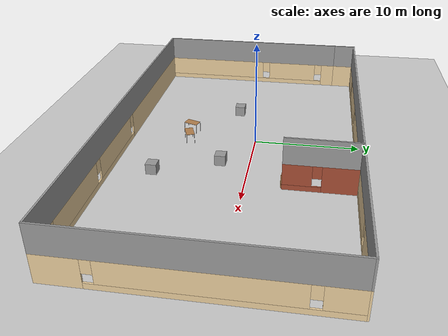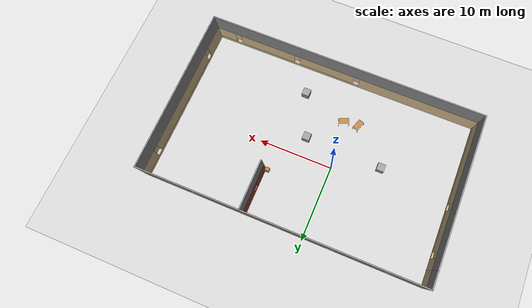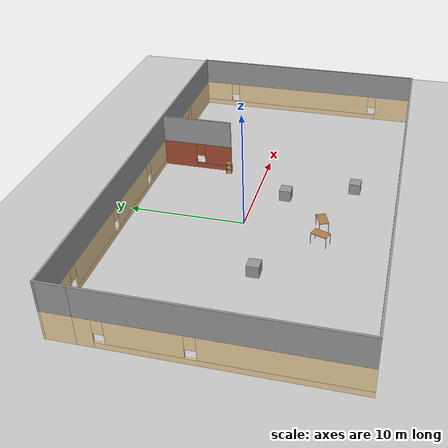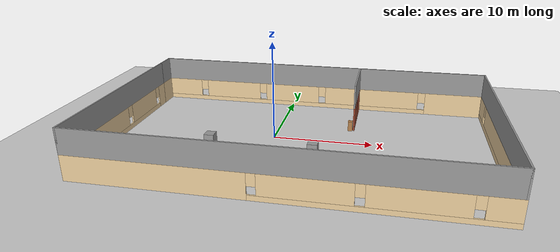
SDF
<sdf version="1.7">
 <world name="default">
  <model name="ground_plane">
   <static>1</static>
   <link name="link">
    <collision name="collision">
     <geometry><plane><normal>0 0 1</normal><size>100 100</size></plane></geometry>
     <surface><friction><ode><mu>100</mu><mu2>50</mu2></ode></friction></surface>
    </collision>
    <visual name="visual">
     <cast_shadows>0</cast_shadows>
     <geometry><plane><normal>0 0 1</normal><size>100 100</size></plane></geometry>
     <material>
      <script><uri>file://media/materials/scripts/gazebo.material</uri><name>Gazebo/Grey</name></script>
     </material>
    </visual>
   </link>
  </model>
  <model name="storage">
   <pose>2.94649 -1.27432 0 0 -0 0</pose>
   <link name="Wall_1">
    <pose>-18.55 -1.125 0 0 0 -1.5708</pose>
    <visual name="Wall_1_Visual_0">
     <pose>-9.16747 0 1.25 0 -0 0</pose>
     <geometry><box><size>1.41505 0.15 2.5</size></box></geometry>
     <material>
      <script><uri>file://media/materials/scripts/gazebo.material</uri><name>Gazebo/Grey</name></script>
      <ambient>0.921569 0.807843 0.615686 1</ambient>
     </material>
    </visual>
    <collision name="Wall_1_Collision_0">
     <geometry><box><size>1.41505 0.15 2.5</size></box></geometry>
     <pose>-9.16747 0 1.25 0 -0 0</pose>
    </collision>
    <visual name="Wall_1_Visual_1">
     <pose>0.707526 0 0.25 0 -0 0</pose>
     <geometry><box><size>18.3349 0.15 0.5</size></box></geometry>
     <material>
      <script><uri>file://media/materials/scripts/gazebo.material</uri><name>Gazebo/Grey</name></script>
      <ambient>0.921569 0.807843 0.615686 1</ambient>
     </material>
    </visual>
    <collision name="Wall_1_Collision_1">
     <geometry><box><size>18.3349 0.15 0.5</size></box></geometry>
     <pose>0.707526 0 0.25 0 -0 0</pose>
    </collision>
    <visual name="Wall_1_Visual_2">
     <pose>-4.94285 0 1.5 0 -0 0</pose>
     <geometry><box><size>5.43421 0.15 2</size></box></geometry>
     <material>
      <script><uri>file://media/materials/scripts/gazebo.material</uri><name>Gazebo/Grey</name></script>
      <ambient>0.921569 0.807843 0.615686 1</ambient>
     </material>
    </visual>
    <collision name="Wall_1_Collision_2">
     <geometry><box><size>5.43421 0.15 2</size></box></geometry>
     <pose>-4.94285 0 1.5 0 -0 0</pose>
    </collision>
    <visual name="Wall_1_Visual_3">
     <pose>4.22463 0 1.5 0 -0 0</pose>
     <geometry><box><size>11.3007 0.15 2</size></box></geometry>
     <material>
      <script><uri>file://media/materials/scripts/gazebo.material</uri><name>Gazebo/Grey</name></script>
      <ambient>0.921569 0.807843 0.615686 1</ambient>
     </material>
    </visual>
    <collision name="Wall_1_Collision_3">
     <geometry><box><size>11.3007 0.15 2</size></box></geometry>
     <pose>4.22463 0 1.5 0 -0 0</pose>
    </collision>
    <visual name="Wall_1_Visual_4">
     <pose>-8.05995 0 1.9 0 -0 0</pose>
     <geometry><box><size>0.8 0.15 1.2</size></box></geometry>
     <material>
      <script><uri>file://media/materials/scripts/gazebo.material</uri><name>Gazebo/Grey</name></script>
      <ambient>0.921569 0.807843 0.615686 1</ambient>
     </material>
    </visual>
    <collision name="Wall_1_Collision_4">
     <geometry><box><size>0.8 0.15 1.2</size></box></geometry>
     <pose>-8.05995 0 1.9 0 -0 0</pose>
    </collision>
    <visual name="Wall_1_Visual_5">
     <pose>-1.82574 0 1.9 0 -0 0</pose>
     <geometry><box><size>0.8 0.15 1.2</size></box></geometry>
     <material>
      <script><uri>file://media/materials/scripts/gazebo.material</uri><name>Gazebo/Grey</name></script>
      <ambient>0.921569 0.807843 0.615686 1</ambient>
     </material>
    </visual>
    <collision name="Wall_1_Collision_5">
     <geometry><box><size>0.8 0.15 1.2</size></box></geometry>
     <pose>-1.82574 0 1.9 0 -0 0</pose>
    </collision>
   </link>
   <link name="Wall_16">
    <collision name="Wall_16_Collision">
     <geometry><box><size>19.75 0.15 2.5</size></box></geometry>
     <pose>0 0 1.25 0 -0 0</pose>
    </collision>
    <visual name="Wall_16_Visual">
     <pose>0 0 1.25 0 -0 0</pose>
     <geometry><box><size>19.75 0.15 2.5</size></box></geometry>
     <material>
      <script><uri>file://media/materials/scripts/gazebo.material</uri><name>Gazebo/Grey</name></script>
      <ambient>1 1 1 1</ambient>
     </material>
    </visual>
    <pose>-18.55 -1.125 2.5 0 0 -1.5708</pose>
   </link>
   <link name="Wall_17">
    <collision name="Wall_17_Collision">
     <geometry><box><size>37.25 0.15 2.5</size></box></geometry>
     <pose>0 0 1.25 0 -0 0</pose>
    </collision>
    <visual name="Wall_17_Visual">
     <pose>0 0 1.25 0 -0 0</pose>
     <geometry><box><size>37.25 0.15 2.5</size></box></geometry>
     <material>
      <script><uri>file://media/materials/scripts/gazebo.material</uri><name>Gazebo/Grey</name></script>
      <ambient>1 1 1 1</ambient>
     </material>
    </visual>
    <pose>0 -10.925 2.5 0 -0 0</pose>
   </link>
   <link name="Wall_18">
    <collision name="Wall_18_Collision">
     <geometry><box><size>22 0.15 2.5</size></box></geometry>
     <pose>0 0 1.25 0 -0 0</pose>
    </collision>
    <visual name="Wall_18_Visual">
     <pose>0 0 1.25 0 -0 0</pose>
     <geometry><box><size>22 0.15 2.5</size></box></geometry>
     <material>
      <script><uri>file://media/materials/scripts/gazebo.material</uri><name>Gazebo/Grey</name></script>
      <ambient>1 1 1 1</ambient>
     </material>
    </visual>
    <pose>18.55 0 2.5 0 -0 1.5708</pose>
   </link>
   <link name="Wall_19">
    <collision name="Wall_19_Collision">
     <geometry><box><size>37.25 0.15 2.5</size></box></geometry>
     <pose>0 0 1.25 0 -0 0</pose>
    </collision>
    <visual name="Wall_19_Visual">
     <pose>0 0 1.25 0 -0 0</pose>
     <geometry><box><size>37.25 0.15 2.5</size></box></geometry>
     <material>
      <script><uri>file://media/materials/scripts/gazebo.material</uri><name>Gazebo/Grey</name></script>
      <ambient>1 1 1 1</ambient>
     </material>
    </visual>
    <pose>0 10.925 2.5 0 -0 3.14159</pose>
   </link>
   <link name="Wall_2">
    <pose>0 -10.925 0 0 -0 0</pose>
    <visual name="Wall_2_Visual_0">
     <pose>-10.4329 0 1.25 0 -0 0</pose>
     <geometry><box><size>16.3841 0.15 2.5</size></box></geometry>
     <material>
      <script><uri>file://media/materials/scripts/gazebo.material</uri><name>Gazebo/Grey</name></script>
      <ambient>0.921569 0.807843 0.615686 1</ambient>
     </material>
    </visual>
    <collision name="Wall_2_Collision_0">
     <geometry><box><size>16.3841 0.15 2.5</size></box></geometry>
     <pose>-10.4329 0 1.25 0 -0 0</pose>
    </collision>
    <visual name="Wall_2_Visual_1">
     <pose>8.19207 0 0.25 0 -0 0</pose>
     <geometry><box><size>20.8659 0.15 0.5</size></box></geometry>
     <material>
      <script><uri>file://media/materials/scripts/gazebo.material</uri><name>Gazebo/Grey</name></script>
      <ambient>0.921569 0.807843 0.615686 1</ambient>
     </material>
    </visual>
    <collision name="Wall_2_Collision_1">
     <geometry><box><size>20.8659 0.15 0.5</size></box></geometry>
     <pose>8.19207 0 0.25 0 -0 0</pose>
    </collision>
    <visual name="Wall_2_Visual_2">
     <pose>2.46838 0 1.5 0 -0 0</pose>
     <geometry><box><size>7.81846 0.15 2</size></box></geometry>
     <material>
      <script><uri>file://media/materials/scripts/gazebo.material</uri><name>Gazebo/Grey</name></script>
      <ambient>0.921569 0.807843 0.615686 1</ambient>
     </material>
    </visual>
    <collision name="Wall_2_Collision_2">
     <geometry><box><size>7.81846 0.15 2</size></box></geometry>
     <pose>2.46838 0 1.5 0 -0 0</pose>
    </collision>
    <visual name="Wall_2_Visual_3">
     <pose>11.1533 0 1.5 0 -0 0</pose>
     <geometry><box><size>7.95147 0.15 2</size></box></geometry>
     <material>
      <script><uri>file://media/materials/scripts/gazebo.material</uri><name>Gazebo/Grey</name></script>
      <ambient>0.921569 0.807843 0.615686 1</ambient>
     </material>
    </visual>
    <collision name="Wall_2_Collision_3">
     <geometry><box><size>7.95147 0.15 2</size></box></geometry>
     <pose>11.1533 0 1.5 0 -0 0</pose>
    </collision>
    <visual name="Wall_2_Visual_4">
     <pose>17.277 0 1.5 0 -0 0</pose>
     <geometry><box><size>2.69592 0.15 2</size></box></geometry>
     <material>
      <script><uri>file://media/materials/scripts/gazebo.material</uri><name>Gazebo/Grey</name></script>
      <ambient>0.921569 0.807843 0.615686 1</ambient>
     </material>
    </visual>
    <collision name="Wall_2_Collision_4">
     <geometry><box><size>2.69592 0.15 2</size></box></geometry>
     <pose>17.277 0 1.5 0 -0 0</pose>
    </collision>
    <visual name="Wall_2_Visual_5">
     <pose>-1.84085 0 1.9 0 -0 0</pose>
     <geometry><box><size>0.8 0.15 1.2</size></box></geometry>
     <material>
      <script><uri>file://media/materials/scripts/gazebo.material</uri><name>Gazebo/Grey</name></script>
      <ambient>0.921569 0.807843 0.615686 1</ambient>
     </material>
    </visual>
    <collision name="Wall_2_Collision_5">
     <geometry><box><size>0.8 0.15 1.2</size></box></geometry>
     <pose>-1.84085 0 1.9 0 -0 0</pose>
    </collision>
    <visual name="Wall_2_Visual_6">
     <pose>6.77761 0 1.9 0 -0 0</pose>
     <geometry><box><size>0.8 0.15 1.2</size></box></geometry>
     <material>
      <script><uri>file://media/materials/scripts/gazebo.material</uri><name>Gazebo/Grey</name></script>
      <ambient>0.921569 0.807843 0.615686 1</ambient>
     </material>
    </visual>
    <collision name="Wall_2_Collision_6">
     <geometry><box><size>0.8 0.15 1.2</size></box></geometry>
     <pose>6.77761 0 1.9 0 -0 0</pose>
    </collision>
    <visual name="Wall_2_Visual_7">
     <pose>15.5291 0 1.9 0 -0 0</pose>
     <geometry><box><size>0.8 0.15 1.2</size></box></geometry>
     <material>
      <script><uri>file://media/materials/scripts/gazebo.material</uri><name>Gazebo/Grey</name></script>
      <ambient>0.921569 0.807843 0.615686 1</ambient>
     </material>
    </visual>
    <collision name="Wall_2_Collision_7">
     <geometry><box><size>0.8 0.15 1.2</size></box></geometry>
     <pose>15.5291 0 1.9 0 -0 0</pose>
    </collision>
   </link>
   <link name="Wall_20">
    <collision name="Wall_20_Collision">
     <geometry><box><size>2.4 0.15 2.5</size></box></geometry>
     <pose>0 0 1.25 0 -0 0</pose>
    </collision>
    <visual name="Wall_20_Visual">
     <pose>0 0 1.25 0 -0 0</pose>
     <geometry><box><size>2.4 0.15 2.5</size></box></geometry>
     <material>
      <script><uri>file://media/materials/scripts/gazebo.material</uri><name>Gazebo/Grey</name></script>
      <ambient>1 1 1 1</ambient>
     </material>
    </visual>
    <pose>-18.55 9.8 2.5 0 0 -1.5708</pose>
   </link>
   <link name="Wall_21">
    <collision name="Wall_21_Collision">
     <geometry><box><size>6.5 0.15 2.5</size></box></geometry>
     <pose>0 0 1.25 0 -0 0</pose>
    </collision>
    <visual name="Wall_21_Visual">
     <pose>0 0 1.25 0 -0 0</pose>
     <geometry><box><size>6.5 0.15 2.5</size></box></geometry>
     <material>
      <script><uri>file://media/materials/scripts/gazebo.material</uri><name>Gazebo/Grey</name></script>
      <ambient>1 1 1 1</ambient>
     </material>
    </visual>
    <pose>4.92417 7.73804 2.5 0 0 -1.5708</pose>
   </link>
   <link name="Wall_3">
    <pose>18.55 0 0 0 -0 1.5708</pose>
    <visual name="Wall_3_Visual_0">
     <pose>-9.23944 0 1.25 0 -0 0</pose>
     <geometry><box><size>3.52111 0.15 2.5</size></box></geometry>
     <material>
      <script><uri>file://media/materials/scripts/gazebo.material</uri><name>Gazebo/Grey</name></script>
      <ambient>0.921569 0.807843 0.615686 1</ambient>
     </material>
    </visual>
    <collision name="Wall_3_Collision_0">
     <geometry><box><size>3.52111 0.15 2.5</size></box></geometry>
     <pose>-9.23944 0 1.25 0 -0 0</pose>
    </collision>
    <visual name="Wall_3_Visual_1">
     <pose>1.76056 0 0.25 0 -0 0</pose>
     <geometry><box><size>18.4789 0.15 0.5</size></box></geometry>
     <material>
      <script><uri>file://media/materials/scripts/gazebo.material</uri><name>Gazebo/Grey</name></script>
      <ambient>0.921569 0.807843 0.615686 1</ambient>
     </material>
    </visual>
    <collision name="Wall_3_Collision_1">
     <geometry><box><size>18.4789 0.15 0.5</size></box></geometry>
     <pose>1.76056 0 0.25 0 -0 0</pose>
    </collision>
    <visual name="Wall_3_Visual_2">
     <pose>0.323485 0 1.5 0 -0 0</pose>
     <geometry><box><size>14.0047 0.15 2</size></box></geometry>
     <material>
      <script><uri>file://media/materials/scripts/gazebo.material</uri><name>Gazebo/Grey</name></script>
      <ambient>0.921569 0.807843 0.615686 1</ambient>
     </material>
    </visual>
    <collision name="Wall_3_Collision_2">
     <geometry><box><size>14.0047 0.15 2</size></box></geometry>
     <pose>0.323485 0 1.5 0 -0 0</pose>
    </collision>
    <visual name="Wall_3_Visual_3">
     <pose>9.56293 0 1.5 0 -0 0</pose>
     <geometry><box><size>2.87414 0.15 2</size></box></geometry>
     <material>
      <script><uri>file://media/materials/scripts/gazebo.material</uri><name>Gazebo/Grey</name></script>
      <ambient>0.921569 0.807843 0.615686 1</ambient>
     </material>
    </visual>
    <collision name="Wall_3_Collision_3">
     <geometry><box><size>2.87414 0.15 2</size></box></geometry>
     <pose>9.56293 0 1.5 0 -0 0</pose>
    </collision>
    <visual name="Wall_3_Visual_4">
     <pose>-7.07888 0 1.9 0 -0 0</pose>
     <geometry><box><size>0.8 0.15 1.2</size></box></geometry>
     <material>
      <script><uri>file://media/materials/scripts/gazebo.material</uri><name>Gazebo/Grey</name></script>
      <ambient>0.921569 0.807843 0.615686 1</ambient>
     </material>
    </visual>
    <collision name="Wall_3_Collision_4">
     <geometry><box><size>0.8 0.15 1.2</size></box></geometry>
     <pose>-7.07888 0 1.9 0 -0 0</pose>
    </collision>
    <visual name="Wall_3_Visual_5">
     <pose>7.72586 0 1.9 0 -0 0</pose>
     <geometry><box><size>0.8 0.15 1.2</size></box></geometry>
     <material>
      <script><uri>file://media/materials/scripts/gazebo.material</uri><name>Gazebo/Grey</name></script>
      <ambient>0.921569 0.807843 0.615686 1</ambient>
     </material>
    </visual>
    <collision name="Wall_3_Collision_5">
     <geometry><box><size>0.8 0.15 1.2</size></box></geometry>
     <pose>7.72586 0 1.9 0 -0 0</pose>
    </collision>
   </link>
   <link name="Wall_4">
    <pose>0 10.925 0 0 -0 3.14159</pose>
    <visual name="Wall_4_Visual_0">
     <pose>-15.5094 0 1.25 0 -0 0</pose>
     <geometry><box><size>6.23121 0.15 2.5</size></box></geometry>
     <material>
      <script><uri>file://media/materials/scripts/gazebo.material</uri><name>Gazebo/Grey</name></script>
      <ambient>0.921569 0.807843 0.615686 1</ambient>
     </material>
    </visual>
    <collision name="Wall_4_Collision_0">
     <geometry><box><size>6.23121 0.15 2.5</size></box></geometry>
     <pose>-15.5094 0 1.25 0 -0 0</pose>
    </collision>
    <visual name="Wall_4_Visual_1">
     <pose>3.1156 0 0.25 0 -0 0</pose>
     <geometry><box><size>31.0188 0.15 0.5</size></box></geometry>
     <material>
      <script><uri>file://media/materials/scripts/gazebo.material</uri><name>Gazebo/Grey</name></script>
      <ambient>0.921569 0.807843 0.615686 1</ambient>
     </material>
    </visual>
    <collision name="Wall_4_Collision_1">
     <geometry><box><size>31.0188 0.15 0.5</size></box></geometry>
     <pose>3.1156 0 0.25 0 -0 0</pose>
    </collision>
    <visual name="Wall_4_Visual_2">
     <pose>-6.27135 0 1.5 0 -0 0</pose>
     <geometry><box><size>10.6449 0.15 2</size></box></geometry>
     <material>
      <script><uri>file://media/materials/scripts/gazebo.material</uri><name>Gazebo/Grey</name></script>
      <ambient>0.921569 0.807843 0.615686 1</ambient>
     </material>
    </visual>
    <collision name="Wall_4_Collision_2">
     <geometry><box><size>10.6449 0.15 2</size></box></geometry>
     <pose>-6.27135 0 1.5 0 -0 0</pose>
    </collision>
    <visual name="Wall_4_Visual_3">
     <pose>3.03343 0 1.5 0 -0 0</pose>
     <geometry><box><size>6.36468 0.15 2</size></box></geometry>
     <material>
      <script><uri>file://media/materials/scripts/gazebo.material</uri><name>Gazebo/Grey</name></script>
      <ambient>0.921569 0.807843 0.615686 1</ambient>
     </material>
    </visual>
    <collision name="Wall_4_Collision_3">
     <geometry><box><size>6.36468 0.15 2</size></box></geometry>
     <pose>3.03343 0 1.5 0 -0 0</pose>
    </collision>
    <visual name="Wall_4_Visual_4">
     <pose>10.3377 0 1.5 0 -0 0</pose>
     <geometry><box><size>6.64383 0.15 2</size></box></geometry>
     <material>
      <script><uri>file://media/materials/scripts/gazebo.material</uri><name>Gazebo/Grey</name></script>
      <ambient>0.921569 0.807843 0.615686 1</ambient>
     </material>
    </visual>
    <collision name="Wall_4_Collision_4">
     <geometry><box><size>6.64383 0.15 2</size></box></geometry>
     <pose>10.3377 0 1.5 0 -0 0</pose>
    </collision>
    <visual name="Wall_4_Visual_5">
     <pose>16.5423 0 1.5 0 -0 0</pose>
     <geometry><box><size>4.1654 0.15 2</size></box></geometry>
     <material>
      <script><uri>file://media/materials/scripts/gazebo.material</uri><name>Gazebo/Grey</name></script>
      <ambient>0.921569 0.807843 0.615686 1</ambient>
     </material>
    </visual>
    <collision name="Wall_4_Collision_5">
     <geometry><box><size>4.1654 0.15 2</size></box></geometry>
     <pose>16.5423 0 1.5 0 -0 0</pose>
    </collision>
    <visual name="Wall_4_Visual_6">
     <pose>-11.9938 0 1.9 0 -0 0</pose>
     <geometry><box><size>0.8 0.15 1.2</size></box></geometry>
     <material>
      <script><uri>file://media/materials/scripts/gazebo.material</uri><name>Gazebo/Grey</name></script>
      <ambient>0.921569 0.807843 0.615686 1</ambient>
     </material>
    </visual>
    <collision name="Wall_4_Collision_6">
     <geometry><box><size>0.8 0.15 1.2</size></box></geometry>
     <pose>-11.9938 0 1.9 0 -0 0</pose>
    </collision>
    <visual name="Wall_4_Visual_7">
     <pose>-0.548908 0 1.9 0 -0 0</pose>
     <geometry><box><size>0.8 0.15 1.2</size></box></geometry>
     <material>
      <script><uri>file://media/materials/scripts/gazebo.material</uri><name>Gazebo/Grey</name></script>
      <ambient>0.921569 0.807843 0.615686 1</ambient>
     </material>
    </visual>
    <collision name="Wall_4_Collision_7">
     <geometry><box><size>0.8 0.15 1.2</size></box></geometry>
     <pose>-0.548908 0 1.9 0 -0 0</pose>
    </collision>
    <visual name="Wall_4_Visual_8">
     <pose>6.61578 0 1.9 0 -0 0</pose>
     <geometry><box><size>0.8 0.15 1.2</size></box></geometry>
     <material>
      <script><uri>file://media/materials/scripts/gazebo.material</uri><name>Gazebo/Grey</name></script>
      <ambient>0.921569 0.807843 0.615686 1</ambient>
     </material>
    </visual>
    <collision name="Wall_4_Collision_8">
     <geometry><box><size>0.8 0.15 1.2</size></box></geometry>
     <pose>6.61578 0 1.9 0 -0 0</pose>
    </collision>
    <visual name="Wall_4_Visual_9">
     <pose>14.0596 0 1.9 0 -0 0</pose>
     <geometry><box><size>0.8 0.15 1.2</size></box></geometry>
     <material>
      <script><uri>file://media/materials/scripts/gazebo.material</uri><name>Gazebo/Grey</name></script>
      <ambient>0.921569 0.807843 0.615686 1</ambient>
     </material>
    </visual>
    <collision name="Wall_4_Collision_9">
     <geometry><box><size>0.8 0.15 1.2</size></box></geometry>
     <pose>14.0596 0 1.9 0 -0 0</pose>
    </collision>
   </link>
   <link name="Wall_5">
    <collision name="Wall_5_Collision">
     <geometry><box><size>2.4 0.15 2.5</size></box></geometry>
     <pose>0 0 1.25 0 -0 0</pose>
    </collision>
    <visual name="Wall_5_Visual">
     <pose>0 0 1.25 0 -0 0</pose>
     <geometry><box><size>2.4 0.15 2.5</size></box></geometry>
     <material>
      <script><uri>file://media/materials/scripts/gazebo.material</uri><name>Gazebo/Grey</name></script>
      <ambient>0.921569 0.807843 0.615686 1</ambient>
     </material>
    </visual>
    <pose>-18.55 9.8 0 0 0 -1.5708</pose>
   </link>
   <link name="Wall_7">
    <pose>4.92417 7.73804 0 0 0 -1.5708</pose>
    <visual name="Wall_7_Visual_0">
     <pose>-1.65814 0 1.25 0 -0 0</pose>
     <geometry><box><size>3.18371 0.15 2.5</size></box></geometry>
     <material>
      <script><uri>file://media/materials/scripts/gazebo.material</uri><name>Gazebo/Bricks</name></script>
      <ambient>1 1 1 1</ambient>
     </material>
    </visual>
    <collision name="Wall_7_Collision_0">
     <geometry><box><size>3.18371 0.15 2.5</size></box></geometry>
     <pose>-1.65814 0 1.25 0 -0 0</pose>
    </collision>
    <visual name="Wall_7_Visual_1">
     <pose>1.59186 0 0.25 0 -0 0</pose>
     <geometry><box><size>3.31629 0.15 0.5</size></box></geometry>
     <material>
      <script><uri>file://media/materials/scripts/gazebo.material</uri><name>Gazebo/Bricks</name></script>
      <ambient>1 1 1 1</ambient>
     </material>
    </visual>
    <collision name="Wall_7_Collision_1">
     <geometry><box><size>3.31629 0.15 0.5</size></box></geometry>
     <pose>1.59186 0 0.25 0 -0 0</pose>
    </collision>
    <visual name="Wall_7_Visual_2">
     <pose>1.99185 0 1.5 0 -0 0</pose>
     <geometry><box><size>2.51629 0.15 2</size></box></geometry>
     <material>
      <script><uri>file://media/materials/scripts/gazebo.material</uri><name>Gazebo/Bricks</name></script>
      <ambient>1 1 1 1</ambient>
     </material>
    </visual>
    <collision name="Wall_7_Collision_2">
     <geometry><box><size>2.51629 0.15 2</size></box></geometry>
     <pose>1.99185 0 1.5 0 -0 0</pose>
    </collision>
    <visual name="Wall_7_Visual_3">
     <pose>0.33371 0 1.9 0 -0 0</pose>
     <geometry><box><size>0.8 0.15 1.2</size></box></geometry>
     <material>
      <script><uri>file://media/materials/scripts/gazebo.material</uri><name>Gazebo/Bricks</name></script>
      <ambient>1 1 1 1</ambient>
     </material>
    </visual>
    <collision name="Wall_7_Collision_3">
     <geometry><box><size>0.8 0.15 1.2</size></box></geometry>
     <pose>0.33371 0 1.9 0 -0 0</pose>
    </collision>
   </link>
   <static>1</static>
  </model>
  <model name="cabinet_1">
   <static>1</static>
   <link name="cabinet_bottom_plate">
    <inertial>
     <pose>0 0 -1 0 -0 0</pose>
     <inertia><ixx>2.05</ixx><ixy>0</ixy><ixz>0</ixz><iyy>2.05</iyy><iyz>0</iyz><izz>2.05</izz></inertia>
     <mass>25</mass>
    </inertial>
    <collision name="cabinet_bottom_plate_geom">
     <pose>0 0 0.01 0 -0 0</pose>
     <geometry><box><size>0.45 0.45 0.02</size></box></geometry>
    </collision>
    <visual name="cabinet_bottom_plate_geom_visual">
     <pose>0 0 0.01 0 -0 0</pose>
     <geometry><box><size>0.45 0.45 0.02</size></box></geometry>
     <material>
      <script><uri>file://media/materials/scripts/gazebo.material</uri><name>Gazebo/Wood</name></script>
     </material>
    </visual>
    <collision name="cabinet_bottom_plate_geom_cabinet_back_plate">
     <pose>0.235 0 0.51 0 -0 0</pose>
     <geometry><box><size>0.02 0.45 1.02</size></box></geometry>
    </collision>
    <visual name="cabinet_bottom_plate_geom_cabinet_back_plate_visual">
     <pose>0.235 0 0.51 0 -0 0</pose>
     <geometry><box><size>0.02 0.45 1.02</size></box></geometry>
     <material>
      <script><uri>file://media/materials/scripts/gazebo.material</uri><name>Gazebo/Wood</name></script>
     </material>
    </visual>
    <collision name="cabinet_bottom_plate_geom_cabinet_left_plate">
     <pose>0 0.235 0.51 0 -0 0</pose>
     <geometry><box><size>0.45 0.02 1.02</size></box></geometry>
    </collision>
    <visual name="cabinet_bottom_plate_geom_cabinet_left_plate_visual">
     <pose>0 0.235 0.51 0 -0 0</pose>
     <geometry><box><size>0.45 0.02 1.02</size></box></geometry>
     <material>
      <script><uri>file://media/materials/scripts/gazebo.material</uri><name>Gazebo/Wood</name></script>
     </material>
    </visual>
    <collision name="cabinet_bottom_plate_geom_cabinet_middle_plate">
     <pose>0 0 0.51 0 -0 0</pose>
     <geometry><box><size>0.45 0.45 0.02</size></box></geometry>
    </collision>
    <visual name="cabinet_bottom_plate_geom_cabinet_middle_plate_visual">
     <pose>0 0 0.51 0 -0 0</pose>
     <geometry><box><size>0.45 0.45 0.02</size></box></geometry>
     <material>
      <script><uri>file://media/materials/scripts/gazebo.material</uri><name>Gazebo/Wood</name></script>
     </material>
    </visual>
    <collision name="cabinet_bottom_plate_geom_cabinet_right_plate">
     <pose>0 -0.235 0.51 0 -0 0</pose>
     <geometry><box><size>0.45 0.02 1.02</size></box></geometry>
    </collision>
    <visual name="cabinet_bottom_plate_geom_cabinet_right_plate_visual">
     <pose>0 -0.235 0.51 0 -0 0</pose>
     <geometry><box><size>0.45 0.02 1.02</size></box></geometry>
     <material>
      <script><uri>file://media/materials/scripts/gazebo.material</uri><name>Gazebo/Wood</name></script>
     </material>
    </visual>
    <collision name="cabinet_bottom_plate_geom_cabinet_top_plate">
     <pose>0 0 1.01 0 -0 0</pose>
     <geometry><box><size>0.45 0.45 0.02</size></box></geometry>
    </collision>
    <visual name="cabinet_bottom_plate_geom_cabinet_top_plate_visual">
     <pose>0 0 1.01 0 -0 0</pose>
     <geometry><box><size>0.45 0.45 0.02</size></box></geometry>
     <material>
      <script><uri>file://media/materials/scripts/gazebo.material</uri><name>Gazebo/Wood</name></script>
     </material>
    </visual>
   </link>
   <pose>7.49581 3.34895 0 0 -0 0</pose>
  </model>
  <model name="table_clone_0">
   <static>0</static>
   <link name="link">
    <collision name="surface">
     <pose>0 0 1 0 -0 0</pose>
     <geometry><box><size>1.5 0.8 0.03</size></box></geometry>
     <surface><friction><ode><mu>0.6</mu><mu2>0.6</mu2></ode></friction></surface>
    </collision>
    <visual name="visual1">
     <pose>0 0 1 0 -0 0</pose>
     <geometry><box><size>1.4 0.8 0.04</size></box></geometry>
     <material>
      <script><uri>file://media/materials/scripts/gazebo.material</uri><name>Gazebo/Wood</name></script>
     </material>
    </visual>
    <collision name="front_left_leg">
     <pose>0.68 0.38 0.5 0 -0 0</pose>
     <geometry><cylinder><radius>0.02</radius><length>1</length></cylinder></geometry>
    </collision>
    <visual name="front_left_leg">
     <pose>0.68 0.38 0.5 0 -0 0</pose>
     <geometry><cylinder><radius>0.02</radius><length>1</length></cylinder></geometry>
     <material>
      <script><uri>file://media/materials/scripts/gazebo.material</uri><name>Gazebo/Grey</name></script>
     </material>
    </visual>
    <collision name="front_right_leg">
     <pose>0.68 -0.38 0.5 0 -0 0</pose>
     <geometry><cylinder><radius>0.02</radius><length>1</length></cylinder></geometry>
    </collision>
    <visual name="front_right_leg">
     <pose>0.68 -0.38 0.5 0 -0 0</pose>
     <geometry><cylinder><radius>0.02</radius><length>1</length></cylinder></geometry>
     <material>
      <script><uri>file://media/materials/scripts/gazebo.material</uri><name>Gazebo/Grey</name></script>
     </material>
    </visual>
    <collision name="back_right_leg">
     <pose>-0.68 -0.38 0.5 0 -0 0</pose>
     <geometry><cylinder><radius>0.02</radius><length>1</length></cylinder></geometry>
    </collision>
    <visual name="back_right_leg">
     <pose>-0.68 -0.38 0.5 0 -0 0</pose>
     <geometry><cylinder><radius>0.02</radius><length>1</length></cylinder></geometry>
     <material>
      <script><uri>file://media/materials/scripts/gazebo.material</uri><name>Gazebo/Grey</name></script>
     </material>
    </visual>
    <collision name="back_left_leg">
     <pose>-0.68 0.38 0.5 0 -0 0</pose>
     <geometry><cylinder><radius>0.02</radius><length>1</length></cylinder></geometry>
    </collision>
    <visual name="back_left_leg">
     <pose>-0.68 0.38 0.5 0 -0 0</pose>
     <geometry><cylinder><radius>0.02</radius><length>1</length></cylinder></geometry>
     <material>
      <script><uri>file://media/materials/scripts/gazebo.material</uri><name>Gazebo/Grey</name></script>
     </material>
    </visual>
    <inertial>
     <inertia><ixx>1</ixx><ixy>0</ixy><ixz>0</ixz><iyy>1</iyy><iyz>0</iyz><izz>1</izz></inertia>
     <mass>1</mass>
    </inertial>
   </link>
   <pose>-1.31955 -6.60868 -4e-06 0 -4e-06 1.24188</pose>
  </model>
  <model name="table_clone_1">
   <static>0</static>
   <link name="link">
    <collision name="surface">
     <pose>0 0 1 0 -0 0</pose>
     <geometry><box><size>1.5 0.8 0.03</size></box></geometry>
     <surface><friction><ode><mu>0.6</mu><mu2>0.6</mu2></ode></friction></surface>
    </collision>
    <visual name="visual1">
     <pose>0 0 1 0 -0 0</pose>
     <geometry><box><size>1.4 0.8 0.04</size></box></geometry>
     <material>
      <script><uri>file://media/materials/scripts/gazebo.material</uri><name>Gazebo/Wood</name></script>
     </material>
    </visual>
    <collision name="front_left_leg">
     <pose>0.68 0.38 0.5 0 -0 0</pose>
     <geometry><cylinder><radius>0.02</radius><length>1</length></cylinder></geometry>
    </collision>
    <visual name="front_left_leg">
     <pose>0.68 0.38 0.5 0 -0 0</pose>
     <geometry><cylinder><radius>0.02</radius><length>1</length></cylinder></geometry>
     <material>
      <script><uri>file://media/materials/scripts/gazebo.material</uri><name>Gazebo/Grey</name></script>
     </material>
    </visual>
    <collision name="front_right_leg">
     <pose>0.68 -0.38 0.5 0 -0 0</pose>
     <geometry><cylinder><radius>0.02</radius><length>1</length></cylinder></geometry>
    </collision>
    <visual name="front_right_leg">
     <pose>0.68 -0.38 0.5 0 -0 0</pose>
     <geometry><cylinder><radius>0.02</radius><length>1</length></cylinder></geometry>
     <material>
      <script><uri>file://media/materials/scripts/gazebo.material</uri><name>Gazebo/Grey</name></script>
     </material>
    </visual>
    <collision name="back_right_leg">
     <pose>-0.68 -0.38 0.5 0 -0 0</pose>
     <geometry><cylinder><radius>0.02</radius><length>1</length></cylinder></geometry>
    </collision>
    <visual name="back_right_leg">
     <pose>-0.68 -0.38 0.5 0 -0 0</pose>
     <geometry><cylinder><radius>0.02</radius><length>1</length></cylinder></geometry>
     <material>
      <script><uri>file://media/materials/scripts/gazebo.material</uri><name>Gazebo/Grey</name></script>
     </material>
    </visual>
    <collision name="back_left_leg">
     <pose>-0.68 0.38 0.5 0 -0 0</pose>
     <geometry><cylinder><radius>0.02</radius><length>1</length></cylinder></geometry>
    </collision>
    <visual name="back_left_leg">
     <pose>-0.68 0.38 0.5 0 -0 0</pose>
     <geometry><cylinder><radius>0.02</radius><length>1</length></cylinder></geometry>
     <material>
      <script><uri>file://media/materials/scripts/gazebo.material</uri><name>Gazebo/Grey</name></script>
     </material>
    </visual>
    <inertial>
     <inertia><ixx>1</ixx><ixy>0</ixy><ixz>0</ixz><iyy>1</iyy><iyz>0</iyz><izz>1</izz></inertia>
     <mass>1</mass>
    </inertial>
   </link>
   <pose>0.662157 -6.44044 -1e-06 2e-06 -0 0.36648</pose>
  </model>
  <model name="unit_box_1">
   <pose>4.4703 -2.64399 0.499995 0 -1e-05 0</pose>
   <link name="link">
    <inertial>
     <mass>1</mass>
     <inertia>
      <ixx>0.166667</ixx>
      <ixy>0</ixy>
      <ixz>0</ixz>
      <iyy>0.166667</iyy>
      <iyz>0</iyz>
      <izz>0.166667</izz>
     </inertia>
    </inertial>
    <collision name="collision"><geometry><box><size>1 1 1</size></box></geometry></collision>
    <visual name="visual">
     <geometry><box><size>1 1 1</size></box></geometry>
     <material>
      <script><name>Gazebo/Grey</name><uri>file://media/materials/scripts/gazebo.material</uri></script>
     </material>
    </visual>
   </link>
  </model>
  <model name="unit_box_2">
   <pose>-6.02827 -2.34368 0.499995 -1e-05 -0 0</pose>
   <link name="link">
    <inertial>
     <mass>1</mass>
     <inertia>
      <ixx>0.166667</ixx>
      <ixy>0</ixy>
      <ixz>0</ixz>
      <iyy>0.166667</iyy>
      <iyz>0</iyz>
      <izz>0.166667</izz>
     </inertia>
    </inertial>
    <collision name="collision"><geometry><box><size>1 1 1</size></box></geometry></collision>
    <visual name="visual">
     <geometry><box><size>1 1 1</size></box></geometry>
     <material>
      <script><name>Gazebo/Grey</name><uri>file://media/materials/scripts/gazebo.material</uri></script>
     </material>
    </visual>
   </link>
  </model>
  <model name="unit_box_3">
   <pose>6.85707 -8.41587 0.499995 0 -1e-05 0</pose>
   <link name="link">
    <inertial>
     <mass>1</mass>
     <inertia>
      <ixx>0.166667</ixx>
      <ixy>0</ixy>
      <ixz>0</ixz>
      <iyy>0.166667</iyy>
      <iyz>0</iyz>
      <izz>0.166667</izz>
     </inertia>
    </inertial>
    <collision name="collision"><geometry><box><size>1 1 1</size></box></geometry></collision>
    <visual name="visual">
     <geometry><box><size>1 1 1</size></box></geometry>
     <material>
      <script><name>Gazebo/Grey</name><uri>file://media/materials/scripts/gazebo.material</uri></script>
     </material>
    </visual>
   </link>
  </model>
 </world>
</sdf>
